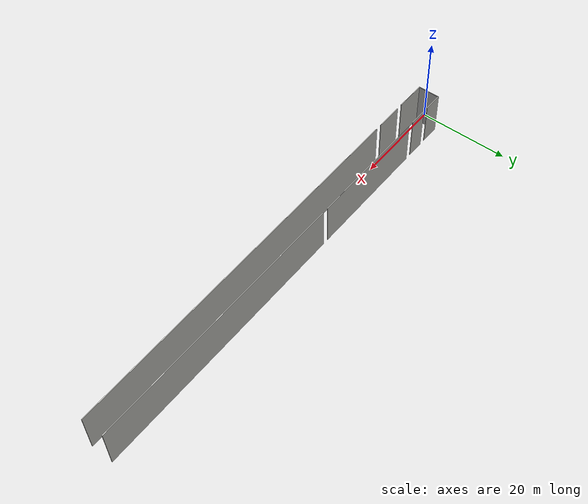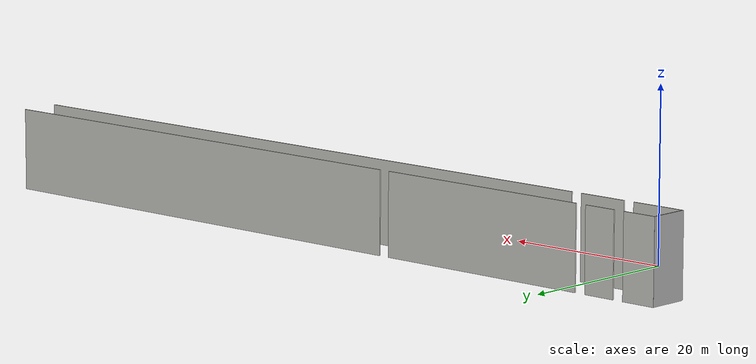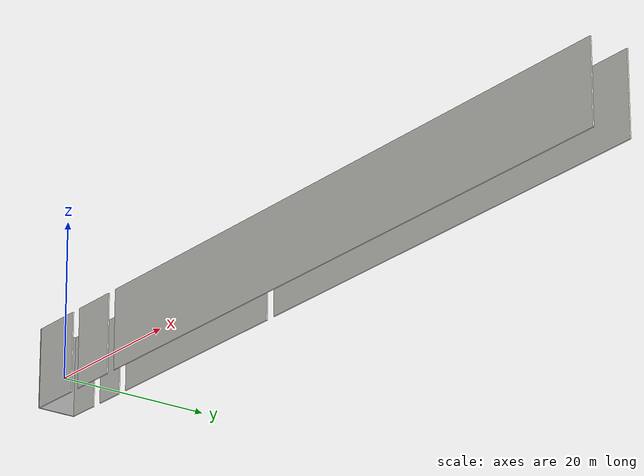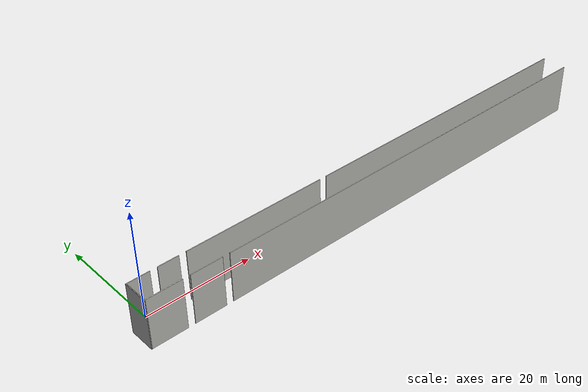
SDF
<?xml version='1.0'?>
<sdf version='1.6'>
  <model name='coridor'>
    <pose frame=''>48.7538 -0.180302 0 0 -0 0</pose>
    <link name='Wall_1'>
      <pose frame=''>0.001359 -2.4254 0 0 -0 3.14159</pose>
      <visual name='Wall_1_Visual_0'>
        <pose frame=''>-7.86606 0 1 0 -0 0</pose>
        <geometry>
          <box>
            <size>84.2679 0.15 10</size>
          </box>
        </geometry>
        <material>
          <script>
            <uri>file://media/materials/scripts/gazebo.material</uri>
            <name>Gazebo/CeilingTiled</name>
          </script>
          <ambient>0.921569 0.807843 0.615686 1</ambient>
        </material>
        <meta>
          <layer>0</layer>
        </meta>
      </visual>
      <collision name='Wall_1_Collision_0'>
        <geometry>
          <box>
            <size>84.2679 0.15 10</size>
          </box>
        </geometry>
        <pose frame=''>-7.86606 0 1 0 -0 0</pose>
      </collision>
      <visual name='Wall_1_Visual_1'>
        <pose frame=''>38.6862 0 1 0 -0 0</pose>
        <geometry>
          <box>
            <size>6.09671 0.15 10</size>
          </box>
        </geometry>
        <material>
          <script>
            <uri>file://media/materials/scripts/gazebo.material</uri>
            <name>Gazebo/CeilingTiled</name>
          </script>
          <ambient>0.921569 0.807843 0.615686 1</ambient>
        </material>
        <meta>
          <layer>0</layer>
        </meta>
      </visual>
      <collision name='Wall_1_Collision_1'>
        <geometry>
          <box>
            <size>6.09671 0.15 10</size>
          </box>
        </geometry>
        <pose frame=''>38.6862 0 1 0 -0 0</pose>
      </collision>
      <visual name='Wall_1_Visual_2'>
        <pose frame=''>46.5523 0 1 0 -0 0</pose>
        <geometry>
          <box>
            <size>6.89541 0.15 10</size>
          </box>
        </geometry>
        <material>
          <script>
            <uri>file://media/materials/scripts/gazebo.material</uri>
            <name>Gazebo/CeilingTiled</name>
          </script>
          <ambient>0.921569 0.807843 0.615686 1</ambient>
        </material>
        <meta>
          <layer>0</layer>
        </meta>
      </visual>
      <collision name='Wall_1_Collision_2'>
        <geometry>
          <box>
            <size>6.89541 0.15 10</size>
          </box>
        </geometry>
        <pose frame=''>46.5523 0 1 0 -0 0</pose>
      </collision>
    </link>
    <link name='Wall_4'>
      <pose frame=''>0.00068 2.4264 0 0 -0 0</pose>
      <visual name='Wall_4_Visual_0'>
        <pose frame=''>-47.8467 0 1 0 -0 0</pose>
        <geometry>
          <box>
            <size>4.30656 0.15 10</size>
          </box>
        </geometry>
        <material>
          <script>
            <uri>file://media/materials/scripts/gazebo.material</uri>
            <name>Gazebo/CeilingTiled</name>
          </script>
          <ambient>0.921569 0.807843 0.615686 1</ambient>
        </material>
        <meta>
          <layer>0</layer>
        </meta>
      </visual>
      <collision name='Wall_4_Collision_0'>
        <geometry>
          <box>
            <size>4.30656 0.15 10</size>
          </box>
        </geometry>
        <pose frame=''>-47.8467 0 1 0 -0 0</pose>
      </collision>
      <visual name='Wall_4_Visual_1'>
        <pose frame=''>-42.331 0 1 0 -0 0</pose>
        <geometry>
          <box>
            <size>3.98096 0.15 10</size>
          </box>
        </geometry>
        <material>
          <script>
            <uri>file://media/materials/scripts/gazebo.material</uri>
            <name>Gazebo/CeilingTiled</name>
          </script>
          <ambient>0.921569 0.807843 0.615686 1</ambient>
        </material>
        <meta>
          <layer>0</layer>
        </meta>
      </visual>
      <collision name='Wall_4_Collision_1'>
        <geometry>
          <box>
            <size>3.98096 0.15 10</size>
          </box>
        </geometry>
        <pose frame=''>-42.331 0 1 0 -0 0</pose>
      </collision>
      <visual name='Wall_4_Visual_2'>
        <pose frame=''>-25.0703 0 1 0 -0 0</pose>
        <geometry>
          <box>
            <size>27.8003 0.15 10</size>
          </box>
        </geometry>
        <material>
          <script>
            <uri>file://media/materials/scripts/gazebo.material</uri>
            <name>Gazebo/CeilingTiled</name>
          </script>
          <ambient>0.921569 0.807843 0.615686 1</ambient>
        </material>
        <meta>
          <layer>0</layer>
        </meta>
      </visual>
      <collision name='Wall_4_Collision_2'>
        <geometry>
          <box>
            <size>27.8003 0.15 10</size>
          </box>
        </geometry>
        <pose frame=''>-25.0703 0 1 0 -0 0</pose>
      </collision>
      <visual name='Wall_4_Visual_3'>
        <pose frame=''>20.0999 0 1 0 -0 0</pose>
        <geometry>
          <box>
            <size>59.8002 0.15 10</size>
          </box>
        </geometry>
        <material>
          <script>
            <uri>file://media/materials/scripts/gazebo.material</uri>
            <name>Gazebo/CeilingTiled</name>
          </script>
          <ambient>0.921569 0.807843 0.615686 1</ambient>
        </material>
        <meta>
          <layer>0</layer>
        </meta>
      </visual>
      <collision name='Wall_4_Collision_3'>
        <geometry>
          <box>
            <size>59.8002 0.15 10</size>
          </box>
        </geometry>
        <pose frame=''>20.0999 0 1 0 -0 0</pose>
      </collision>
    </link>
    <link name='Wall_6'>
      <collision name='Wall_6_Collision'>
        <geometry>
          <box>
            <size>5 0.15 10</size>
          </box>
        </geometry>
        <pose frame=''>0 0 1 0 -0 0</pose>
      </collision>
      <visual name='Wall_6_Visual'>
        <pose frame=''>0 0 1 0 -0 0</pose>
        <geometry>
          <box>
            <size>5 0.15 10</size>
          </box>
        </geometry>
        <material>
          <script>
            <uri>file://media/materials/scripts/gazebo.material</uri>
            <name>Gazebo/Grey</name>
          </script>
          <ambient>1 1 1 1</ambient>
        </material>
        <meta>
          <layer>0</layer>
        </meta>
      </visual>
      <pose frame=''>-49.9264 -0.001401 0 0 -0 -1.5708</pose>
    </link>
    <static>1</static>
  </model>
</sdf>
